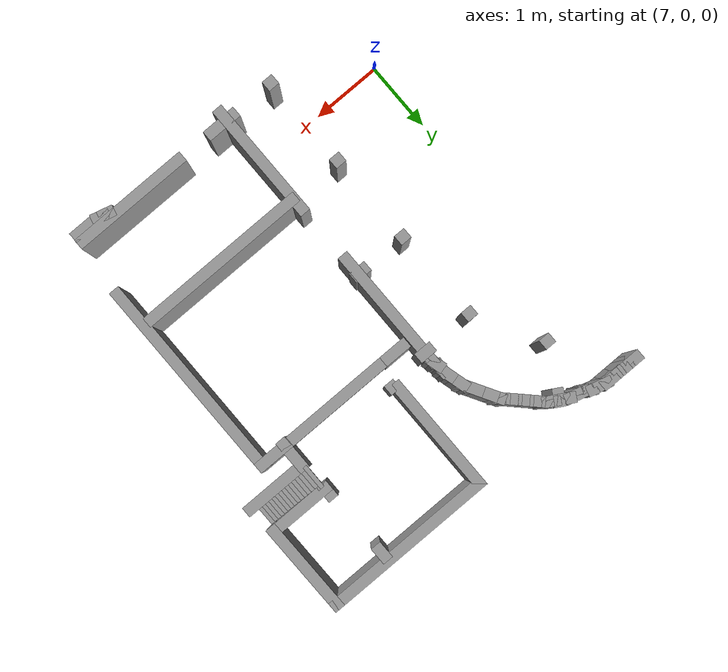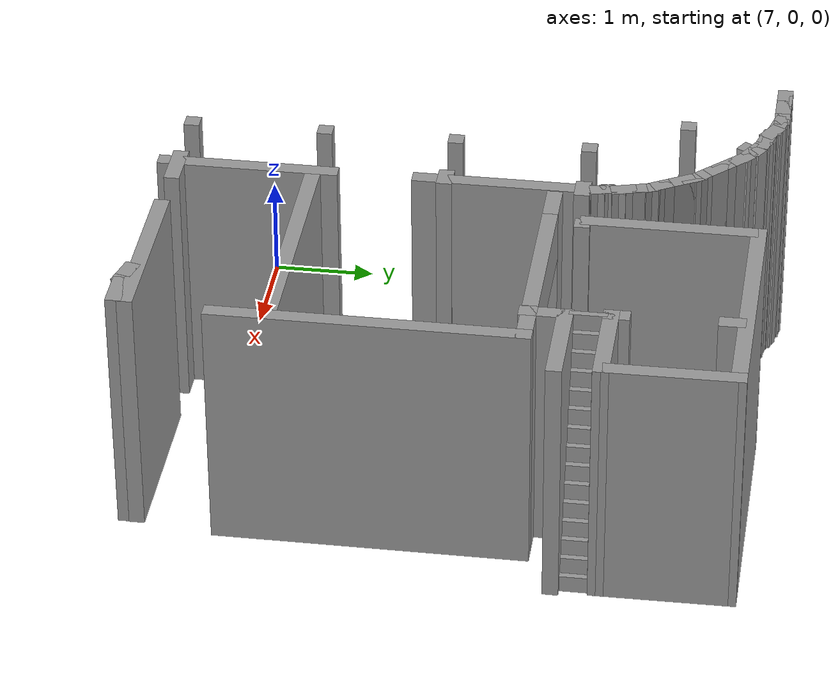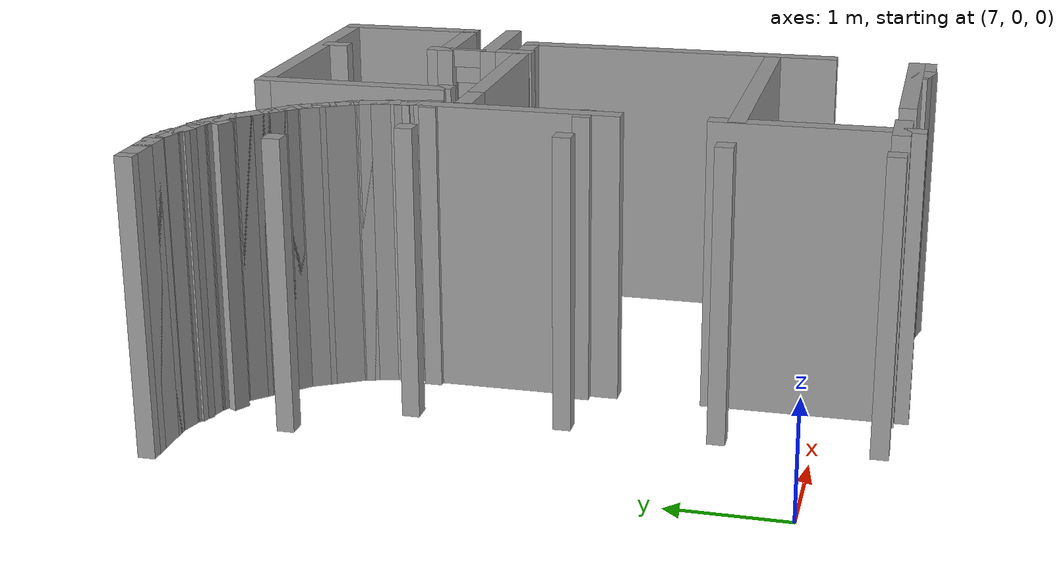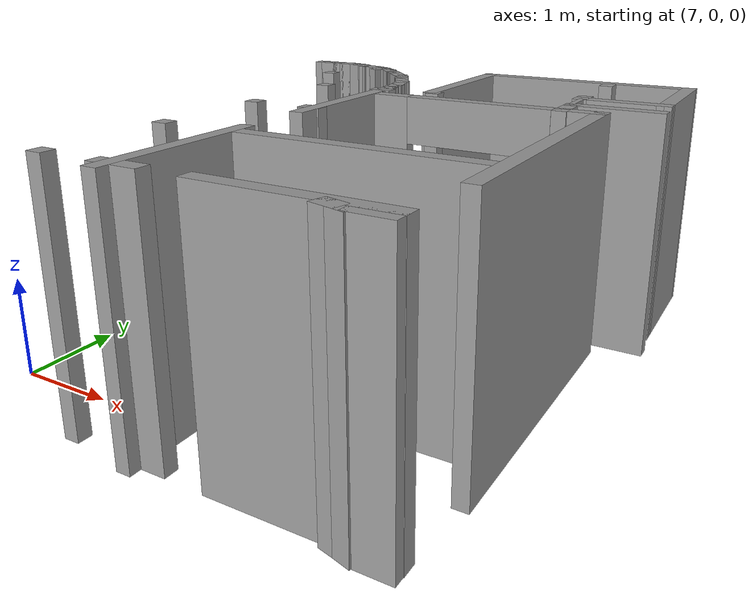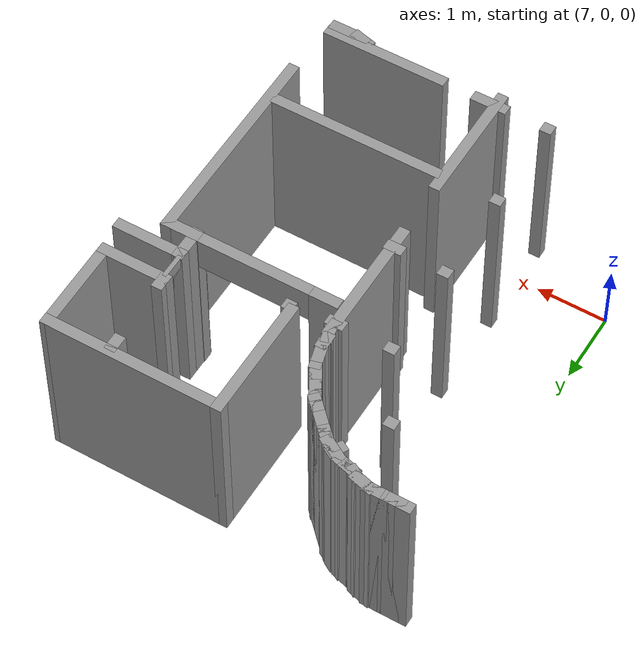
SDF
<sdf version="1.6">
 <model name="draft2">
  <pose>6.97389 -0.64018 0 0 -0 0</pose>
  <link name="Stairs_1">
   <visual name="Stairs_1_Visual_0">
    <pose>5.01456 4.29354 0.083333 0 -0 -1.5708</pose>
    <geometry><box><size>0.352343 0.060625 0.166667</size></box></geometry>
    <material>
     <script><uri>file://media/materials/scripts/gazebo.material</uri><name>Gazebo/Grey</name></script>
     <ambient>1 1 1 1</ambient>
    </material>
   </visual>
   <collision name="Stairs_1_Collision_0">
    <geometry><box><size>0.352343 0.060625 0.166667</size></box></geometry>
    <pose>5.01456 4.29354 0.083333 0 -0 -1.5708</pose>
   </collision>
   <visual name="Stairs_1_Visual_1">
    <pose>4.95394 4.29354 0.25 0 -0 -1.5708</pose>
    <geometry><box><size>0.352343 0.060625 0.166667</size></box></geometry>
    <material>
     <script><uri>file://media/materials/scripts/gazebo.material</uri><name>Gazebo/Grey</name></script>
     <ambient>1 1 1 1</ambient>
    </material>
   </visual>
   <collision name="Stairs_1_Collision_1">
    <geometry><box><size>0.352343 0.060625 0.166667</size></box></geometry>
    <pose>4.95394 4.29354 0.25 0 -0 -1.5708</pose>
   </collision>
   <visual name="Stairs_1_Visual_2">
    <pose>4.89331 4.29354 0.416667 0 -0 -1.5708</pose>
    <geometry><box><size>0.352343 0.060625 0.166667</size></box></geometry>
    <material>
     <script><uri>file://media/materials/scripts/gazebo.material</uri><name>Gazebo/Grey</name></script>
     <ambient>1 1 1 1</ambient>
    </material>
   </visual>
   <collision name="Stairs_1_Collision_2">
    <geometry><box><size>0.352343 0.060625 0.166667</size></box></geometry>
    <pose>4.89331 4.29354 0.416667 0 -0 -1.5708</pose>
   </collision>
   <visual name="Stairs_1_Visual_3">
    <pose>4.83269 4.29354 0.583333 0 -0 -1.5708</pose>
    <geometry><box><size>0.352343 0.060625 0.166667</size></box></geometry>
    <material>
     <script><uri>file://media/materials/scripts/gazebo.material</uri><name>Gazebo/Grey</name></script>
     <ambient>1 1 1 1</ambient>
    </material>
   </visual>
   <collision name="Stairs_1_Collision_3">
    <geometry><box><size>0.352343 0.060625 0.166667</size></box></geometry>
    <pose>4.83269 4.29354 0.583333 0 -0 -1.5708</pose>
   </collision>
   <visual name="Stairs_1_Visual_4">
    <pose>4.77206 4.29354 0.75 0 -0 -1.5708</pose>
    <geometry><box><size>0.352343 0.060625 0.166667</size></box></geometry>
    <material>
     <script><uri>file://media/materials/scripts/gazebo.material</uri><name>Gazebo/Grey</name></script>
     <ambient>1 1 1 1</ambient>
    </material>
   </visual>
   <collision name="Stairs_1_Collision_4">
    <geometry><box><size>0.352343 0.060625 0.166667</size></box></geometry>
    <pose>4.77206 4.29354 0.75 0 -0 -1.5708</pose>
   </collision>
   <visual name="Stairs_1_Visual_5">
    <pose>4.71144 4.29354 0.916667 0 -0 -1.5708</pose>
    <geometry><box><size>0.352343 0.060625 0.166667</size></box></geometry>
    <material>
     <script><uri>file://media/materials/scripts/gazebo.material</uri><name>Gazebo/Grey</name></script>
     <ambient>1 1 1 1</ambient>
    </material>
   </visual>
   <collision name="Stairs_1_Collision_5">
    <geometry><box><size>0.352343 0.060625 0.166667</size></box></geometry>
    <pose>4.71144 4.29354 0.916667 0 -0 -1.5708</pose>
   </collision>
   <visual name="Stairs_1_Visual_6">
    <pose>4.65081 4.29354 1.08333 0 -0 -1.5708</pose>
    <geometry><box><size>0.352343 0.060625 0.166667</size></box></geometry>
    <material>
     <script><uri>file://media/materials/scripts/gazebo.material</uri><name>Gazebo/Grey</name></script>
     <ambient>1 1 1 1</ambient>
    </material>
   </visual>
   <collision name="Stairs_1_Collision_6">
    <geometry><box><size>0.352343 0.060625 0.166667</size></box></geometry>
    <pose>4.65081 4.29354 1.08333 0 -0 -1.5708</pose>
   </collision>
   <visual name="Stairs_1_Visual_7">
    <pose>4.59019 4.29354 1.25 0 -0 -1.5708</pose>
    <geometry><box><size>0.352343 0.060625 0.166667</size></box></geometry>
    <material>
     <script><uri>file://media/materials/scripts/gazebo.material</uri><name>Gazebo/Grey</name></script>
     <ambient>1 1 1 1</ambient>
    </material>
   </visual>
   <collision name="Stairs_1_Collision_7">
    <geometry><box><size>0.352343 0.060625 0.166667</size></box></geometry>
    <pose>4.59019 4.29354 1.25 0 -0 -1.5708</pose>
   </collision>
   <visual name="Stairs_1_Visual_8">
    <pose>4.52956 4.29354 1.41667 0 -0 -1.5708</pose>
    <geometry><box><size>0.352343 0.060625 0.166667</size></box></geometry>
    <material>
     <script><uri>file://media/materials/scripts/gazebo.material</uri><name>Gazebo/Grey</name></script>
     <ambient>1 1 1 1</ambient>
    </material>
   </visual>
   <collision name="Stairs_1_Collision_8">
    <geometry><box><size>0.352343 0.060625 0.166667</size></box></geometry>
    <pose>4.52956 4.29354 1.41667 0 -0 -1.5708</pose>
   </collision>
   <visual name="Stairs_1_Visual_9">
    <pose>4.46894 4.29354 1.58333 0 -0 -1.5708</pose>
    <geometry><box><size>0.352343 0.060625 0.166667</size></box></geometry>
    <material>
     <script><uri>file://media/materials/scripts/gazebo.material</uri><name>Gazebo/Grey</name></script>
     <ambient>1 1 1 1</ambient>
    </material>
   </visual>
   <collision name="Stairs_1_Collision_9">
    <geometry><box><size>0.352343 0.060625 0.166667</size></box></geometry>
    <pose>4.46894 4.29354 1.58333 0 -0 -1.5708</pose>
   </collision>
   <visual name="Stairs_1_Visual_10">
    <pose>4.40831 4.29354 1.75 0 -0 -1.5708</pose>
    <geometry><box><size>0.352343 0.060625 0.166667</size></box></geometry>
    <material>
     <script><uri>file://media/materials/scripts/gazebo.material</uri><name>Gazebo/Grey</name></script>
     <ambient>1 1 1 1</ambient>
    </material>
   </visual>
   <collision name="Stairs_1_Collision_10">
    <geometry><box><size>0.352343 0.060625 0.166667</size></box></geometry>
    <pose>4.40831 4.29354 1.75 0 -0 -1.5708</pose>
   </collision>
   <visual name="Stairs_1_Visual_11">
    <pose>4.34769 4.29354 1.91667 0 -0 -1.5708</pose>
    <geometry><box><size>0.352343 0.060625 0.166667</size></box></geometry>
    <material>
     <script><uri>file://media/materials/scripts/gazebo.material</uri><name>Gazebo/Grey</name></script>
     <ambient>1 1 1 1</ambient>
    </material>
   </visual>
   <collision name="Stairs_1_Collision_11">
    <geometry><box><size>0.352343 0.060625 0.166667</size></box></geometry>
    <pose>4.34769 4.29354 1.91667 0 -0 -1.5708</pose>
   </collision>
   <visual name="Stairs_1_Visual_12">
    <pose>4.28706 4.29354 2.08333 0 -0 -1.5708</pose>
    <geometry><box><size>0.352343 0.060625 0.166667</size></box></geometry>
    <material>
     <script><uri>file://media/materials/scripts/gazebo.material</uri><name>Gazebo/Grey</name></script>
     <ambient>1 1 1 1</ambient>
    </material>
   </visual>
   <collision name="Stairs_1_Collision_12">
    <geometry><box><size>0.352343 0.060625 0.166667</size></box></geometry>
    <pose>4.28706 4.29354 2.08333 0 -0 -1.5708</pose>
   </collision>
   <visual name="Stairs_1_Visual_13">
    <pose>4.22644 4.29354 2.25 0 -0 -1.5708</pose>
    <geometry><box><size>0.352343 0.060625 0.166667</size></box></geometry>
    <material>
     <script><uri>file://media/materials/scripts/gazebo.material</uri><name>Gazebo/Grey</name></script>
     <ambient>1 1 1 1</ambient>
    </material>
   </visual>
   <collision name="Stairs_1_Collision_13">
    <geometry><box><size>0.352343 0.060625 0.166667</size></box></geometry>
    <pose>4.22644 4.29354 2.25 0 -0 -1.5708</pose>
   </collision>
   <visual name="Stairs_1_Visual_14">
    <pose>4.16582 4.29354 2.41667 0 -0 -1.5708</pose>
    <geometry><box><size>0.352343 0.060625 0.166667</size></box></geometry>
    <material>
     <script><uri>file://media/materials/scripts/gazebo.material</uri><name>Gazebo/Grey</name></script>
     <ambient>1 1 1 1</ambient>
    </material>
   </visual>
   <collision name="Stairs_1_Collision_14">
    <geometry><box><size>0.352343 0.060625 0.166667</size></box></geometry>
    <pose>4.16582 4.29354 2.41667 0 -0 -1.5708</pose>
   </collision>
  </link>
  <link name="Wall_112">
   <collision name="Wall_112_Collision">
    <geometry><box><size>0.25 0.15 2.5</size></box></geometry>
    <pose>0 0 1.25 0 -0 0</pose>
   </collision>
   <visual name="Wall_112_Visual">
    <pose>0 0 1.25 0 -0 0</pose>
    <geometry><box><size>0.25 0.15 2.5</size></box></geometry>
    <material>
     <script><uri>file://media/materials/scripts/gazebo.material</uri><name>Gazebo/Grey</name></script>
     <ambient>1 1 1 1</ambient>
    </material>
   </visual>
   <pose>1.12694 5.5445 0 0 0 -2.0944</pose>
  </link>
  <link name="Wall_114">
   <collision name="Wall_114_Collision">
    <geometry><box><size>0.25 0.15 2.5</size></box></geometry>
    <pose>0 0 1.25 0 -0 0</pose>
   </collision>
   <visual name="Wall_114_Visual">
    <pose>0 0 1.25 0 -0 0</pose>
    <geometry><box><size>0.25 0.15 2.5</size></box></geometry>
    <material>
     <script><uri>file://media/materials/scripts/gazebo.material</uri><name>Gazebo/Grey</name></script>
     <ambient>1 1 1 1</ambient>
    </material>
   </visual>
   <pose>2.05194 4.00781 0 0 -0 3.14159</pose>
  </link>
  <link name="Wall_116">
   <collision name="Wall_116_Collision">
    <geometry><box><size>0.25 0.15 2.5</size></box></geometry>
    <pose>0 0 1.25 0 -0 0</pose>
   </collision>
   <visual name="Wall_116_Visual">
    <pose>0 0 1.25 0 -0 0</pose>
    <geometry><box><size>0.25 0.15 2.5</size></box></geometry>
    <material>
     <script><uri>file://media/materials/scripts/gazebo.material</uri><name>Gazebo/Grey</name></script>
     <ambient>1 1 1 1</ambient>
    </material>
   </visual>
   <pose>2.02194 2.6878 0 0 -0 3.14159</pose>
  </link>
  <link name="Wall_135">
   <collision name="Wall_135_Collision">
    <geometry><box><size>0.16 0.15 2.5</size></box></geometry>
    <pose>0 0 1.25 0 -0 0</pose>
   </collision>
   <visual name="Wall_135_Visual">
    <pose>0 0 1.25 0 -0 0</pose>
    <geometry><box><size>0.16 0.15 2.5</size></box></geometry>
    <material>
     <script><uri>file://media/materials/scripts/gazebo.material</uri><name>Gazebo/Grey</name></script>
     <ambient>1 1 1 1</ambient>
    </material>
   </visual>
   <pose>0.775493 4.90486 0 0 -0 0</pose>
  </link>
  <link name="Wall_137">
   <collision name="Wall_137_Collision">
    <geometry><box><size>0.16 0.15 2.5</size></box></geometry>
    <pose>0 0 1.25 0 -0 0</pose>
   </collision>
   <visual name="Wall_137_Visual">
    <pose>0 0 1.25 0 -0 0</pose>
    <geometry><box><size>0.16 0.15 2.5</size></box></geometry>
    <material>
     <script><uri>file://media/materials/scripts/gazebo.material</uri><name>Gazebo/Grey</name></script>
     <ambient>1 1 1 1</ambient>
    </material>
   </visual>
   <pose>1.30449 3.99234 0 0 -0 0</pose>
  </link>
  <link name="Wall_139">
   <collision name="Wall_139_Collision">
    <geometry><box><size>0.16 0.15 2.5</size></box></geometry>
    <pose>0 0 1.25 0 -0 0</pose>
   </collision>
   <visual name="Wall_139_Visual">
    <pose>0 0 1.25 0 -0 0</pose>
    <geometry><box><size>0.16 0.15 2.5</size></box></geometry>
    <material>
     <script><uri>file://media/materials/scripts/gazebo.material</uri><name>Gazebo/Grey</name></script>
     <ambient>1 1 1 1</ambient>
    </material>
   </visual>
   <pose>1.31772 2.69629 0 0 -0 0</pose>
  </link>
  <link name="Wall_141">
   <collision name="Wall_141_Collision">
    <geometry><box><size>0.16 0.15 2.5</size></box></geometry>
    <pose>0 0 1.25 0 -0 0</pose>
   </collision>
   <visual name="Wall_141_Visual">
    <pose>0 0 1.25 0 -0 0</pose>
    <geometry><box><size>0.16 0.15 2.5</size></box></geometry>
    <material>
     <script><uri>file://media/materials/scripts/gazebo.material</uri><name>Gazebo/Grey</name></script>
     <ambient>1 1 1 1</ambient>
    </material>
   </visual>
   <pose>1.31772 1.41346 0 0 -0 0</pose>
  </link>
  <link name="Wall_143">
   <collision name="Wall_143_Collision">
    <geometry><box><size>0.16 0.15 2.5</size></box></geometry>
    <pose>0 0 1.25 0 -0 0</pose>
   </collision>
   <visual name="Wall_143_Visual">
    <pose>0 0 1.25 0 -0 0</pose>
    <geometry><box><size>0.16 0.15 2.5</size></box></geometry>
    <material>
     <script><uri>file://media/materials/scripts/gazebo.material</uri><name>Gazebo/Grey</name></script>
     <ambient>1 1 1 1</ambient>
    </material>
   </visual>
   <pose>1.33094 0.104189 0 0 -0 0</pose>
  </link>
  <link name="Wall_145">
   <collision name="Wall_145_Collision">
    <geometry><box><size>1.75 0.15 2.5</size></box></geometry>
    <pose>0 0 1.25 0 -0 0</pose>
   </collision>
   <visual name="Wall_145_Visual">
    <pose>0 0 1.25 0 -0 0</pose>
    <geometry><box><size>1.75 0.15 2.5</size></box></geometry>
    <material>
     <script><uri>file://media/materials/scripts/gazebo.material</uri><name>Gazebo/Grey</name></script>
     <ambient>1 1 1 1</ambient>
    </material>
   </visual>
   <pose>2.06654 0.785389 0 0 0 -1.5708</pose>
  </link>
  <link name="Wall_152">
   <collision name="Wall_152_Collision">
    <geometry><box><size>0.5 0.15 2.5</size></box></geometry>
    <pose>0 0 1.25 0 -0 0</pose>
   </collision>
   <visual name="Wall_152_Visual">
    <pose>0 0 1.25 0 -0 0</pose>
    <geometry><box><size>0.5 0.15 2.5</size></box></geometry>
    <material>
     <script><uri>file://media/materials/scripts/gazebo.material</uri><name>Gazebo/Grey</name></script>
     <ambient>1 1 1 1</ambient>
    </material>
   </visual>
   <pose>2.14574 0.104189 0 0 -0 0</pose>
  </link>
  <link name="Wall_157">
   <pose>3.39107 3.75429 0 0 -0 3.14159</pose>
   <visual name="Wall_157_Visual_0">
    <pose>-0.982829 0 1.25 0 -0 0</pose>
    <geometry><box><size>0.534342 0.15 2.5</size></box></geometry>
    <material>
     <script><uri>file://media/materials/scripts/gazebo.material</uri><name>Gazebo/Grey</name></script>
     <ambient>1 1 1 1</ambient>
    </material>
   </visual>
   <collision name="Wall_157_Collision_0">
    <geometry><box><size>0.534342 0.15 2.5</size></box></geometry>
    <pose>-0.982829 0 1.25 0 -0 0</pose>
   </collision>
   <visual name="Wall_157_Visual_1">
    <pose>1.04948 0 1.25 0 -0 0</pose>
    <geometry><box><size>0.401036 0.15 2.5</size></box></geometry>
    <material>
     <script><uri>file://media/materials/scripts/gazebo.material</uri><name>Gazebo/Grey</name></script>
     <ambient>1 1 1 1</ambient>
    </material>
   </visual>
   <collision name="Wall_157_Collision_1">
    <geometry><box><size>0.401036 0.15 2.5</size></box></geometry>
    <pose>1.04948 0 1.25 0 -0 0</pose>
   </collision>
   <visual name="Wall_157_Visual_2">
    <pose>0.066653 0 2.25 0 -0 0</pose>
    <geometry><box><size>1.56462 0.15 0.5</size></box></geometry>
    <material>
     <script><uri>file://media/materials/scripts/gazebo.material</uri><name>Gazebo/Grey</name></script>
     <ambient>1 1 1 1</ambient>
    </material>
   </visual>
   <collision name="Wall_157_Collision_2">
    <geometry><box><size>1.56462 0.15 0.5</size></box></geometry>
    <pose>0.066653 0 2.25 0 -0 0</pose>
   </collision>
  </link>
  <link name="Wall_159">
   <collision name="Wall_159_Collision">
    <geometry><box><size>3 0.15 2.5</size></box></geometry>
    <pose>0 0 1.25 0 -0 0</pose>
   </collision>
   <visual name="Wall_159_Visual">
    <pose>0 0 1.25 0 -0 0</pose>
    <geometry><box><size>3 0.15 2.5</size></box></geometry>
    <material>
     <script><uri>file://media/materials/scripts/gazebo.material</uri><name>Gazebo/Grey</name></script>
     <ambient>1 1 1 1</ambient>
    </material>
   </visual>
   <pose>4.56607 2.32929 0 0 0 -1.5708</pose>
  </link>
  <link name="Wall_169">
   <collision name="Wall_169_Collision">
    <geometry><box><size>1.75 0.15 2.5</size></box></geometry>
    <pose>0 0 1.25 0 -0 0</pose>
   </collision>
   <visual name="Wall_169_Visual">
    <pose>0 0 1.25 0 -0 0</pose>
    <geometry><box><size>1.75 0.15 2.5</size></box></geometry>
    <material>
     <script><uri>file://media/materials/scripts/gazebo.material</uri><name>Gazebo/Grey</name></script>
     <ambient>1 1 1 1</ambient>
    </material>
   </visual>
   <pose>3.66307 0.096172 0 0 -0 3.14159</pose>
  </link>
  <link name="Wall_214">
   <collision name="Wall_214_Collision">
    <geometry><box><size>0.393478 0.15 2.5</size></box></geometry>
    <pose>0 0 1.25 0 -0 0</pose>
   </collision>
   <visual name="Wall_214_Visual">
    <pose>0 0 1.25 0 -0 0</pose>
    <geometry><box><size>0.393478 0.15 2.5</size></box></geometry>
    <material>
     <script><uri>file://media/materials/scripts/gazebo.material</uri><name>Gazebo/Grey</name></script>
     <ambient>1 1 1 1</ambient>
    </material>
   </visual>
   <pose>4.33655 -0.0091 0 0 -0 3.14159</pose>
  </link>
  <link name="Wall_218">
   <collision name="Wall_218_Collision">
    <geometry><box><size>0.249146 0.15 2.5</size></box></geometry>
    <pose>0 0 1.25 0 -0 0</pose>
   </collision>
   <visual name="Wall_218_Visual">
    <pose>0 0 1.25 0 -0 0</pose>
    <geometry><box><size>0.249146 0.15 2.5</size></box></geometry>
    <material>
     <script><uri>file://media/materials/scripts/gazebo.material</uri><name>Gazebo/Grey</name></script>
     <ambient>1 1 1 1</ambient>
    </material>
   </visual>
   <pose>4.08872 0.003943 0 0 -0 2.87534</pose>
  </link>
  <link name="Wall_219">
   <collision name="Wall_219_Collision">
    <geometry><box><size>0.221706 0.15 2.5</size></box></geometry>
    <pose>0 0 1.25 0 -0 0</pose>
   </collision>
   <visual name="Wall_219_Visual">
    <pose>0 0 1.25 0 -0 0</pose>
    <geometry><box><size>0.221706 0.15 2.5</size></box></geometry>
    <material>
     <script><uri>file://media/materials/scripts/gazebo.material</uri><name>Gazebo/Grey</name></script>
     <ambient>1 1 1 1</ambient>
    </material>
   </visual>
   <pose>4.00611 0.025682 0 0 -0 2.89661</pose>
  </link>
  <link name="Wall_237">
   <collision name="Wall_237_Collision">
    <geometry><box><size>0.15 0.15 2.5</size></box></geometry>
    <pose>0 0 1.25 0 -0 0</pose>
   </collision>
   <visual name="Wall_237_Visual">
    <pose>0 0 1.25 0 -0 0</pose>
    <geometry><box><size>0.15 0.15 2.5</size></box></geometry>
    <material>
     <script><uri>file://media/materials/scripts/gazebo.material</uri><name>Gazebo/Grey</name></script>
     <ambient>1 1 1 1</ambient>
    </material>
   </visual>
   <pose>2.66183 4.07125 0 0 -0 0</pose>
  </link>
  <link name="Wall_239">
   <collision name="Wall_239_Collision">
    <geometry><box><size>1.75 0.15 2.5</size></box></geometry>
    <pose>0 0 1.25 0 -0 0</pose>
   </collision>
   <visual name="Wall_239_Visual">
    <pose>0 0 1.25 0 -0 0</pose>
    <geometry><box><size>1.75 0.15 2.5</size></box></geometry>
    <material>
     <script><uri>file://media/materials/scripts/gazebo.material</uri><name>Gazebo/Grey</name></script>
     <ambient>1 1 1 1</ambient>
    </material>
   </visual>
   <pose>2.60896 4.91828 0 0 0 -1.5708</pose>
  </link>
  <link name="Wall_241">
   <collision name="Wall_241_Collision">
    <geometry><box><size>2.53025 0.15 2.5</size></box></geometry>
    <pose>0 0 1.25 0 -0 0</pose>
   </collision>
   <visual name="Wall_241_Visual">
    <pose>0 0 1.25 0 -0 0</pose>
    <geometry><box><size>2.53025 0.15 2.5</size></box></geometry>
    <material>
     <script><uri>file://media/materials/scripts/gazebo.material</uri><name>Gazebo/Grey</name></script>
     <ambient>1 1 1 1</ambient>
    </material>
   </visual>
   <pose>3.79908 5.71828 0 0 -0 0</pose>
  </link>
  <link name="Wall_243">
   <collision name="Wall_243_Collision">
    <geometry><box><size>0.25 0.15 2.5</size></box></geometry>
    <pose>0 0 1.25 0 -0 0</pose>
   </collision>
   <visual name="Wall_243_Visual">
    <pose>0 0 1.25 0 -0 0</pose>
    <geometry><box><size>0.25 0.15 2.5</size></box></geometry>
    <material>
     <script><uri>file://media/materials/scripts/gazebo.material</uri><name>Gazebo/Grey</name></script>
     <ambient>1 1 1 1</ambient>
    </material>
   </visual>
   <pose>4.12758 5.59159 0 0 -0 1.5708</pose>
  </link>
  <link name="Wall_246">
   <collision name="Wall_246_Collision">
    <geometry><box><size>1 0.15 2.5</size></box></geometry>
    <pose>0 0 1.25 0 -0 0</pose>
   </collision>
   <visual name="Wall_246_Visual">
    <pose>0 0 1.25 0 -0 0</pose>
    <geometry><box><size>1 0.15 2.5</size></box></geometry>
    <material>
     <script><uri>file://media/materials/scripts/gazebo.material</uri><name>Gazebo/Grey</name></script>
     <ambient>1 1 1 1</ambient>
    </material>
   </visual>
   <pose>4.57447 4.49722 0 0 -0 3.14159</pose>
  </link>
  <link name="Wall_247">
   <collision name="Wall_247_Collision">
    <geometry><box><size>0.25 0.15 2.5</size></box></geometry>
    <pose>0 0 1.25 0 -0 0</pose>
   </collision>
   <visual name="Wall_247_Visual">
    <pose>0 0 1.25 0 -0 0</pose>
    <geometry><box><size>0.25 0.15 2.5</size></box></geometry>
    <material>
     <script><uri>file://media/materials/scripts/gazebo.material</uri><name>Gazebo/Grey</name></script>
     <ambient>1 1 1 1</ambient>
    </material>
   </visual>
   <pose>4.14947 4.54722 0 0 -0 1.5708</pose>
  </link>
  <link name="Wall_249">
   <collision name="Wall_249_Collision">
    <geometry><box><size>1 0.15 2.5</size></box></geometry>
    <pose>0 0 1.25 0 -0 0</pose>
   </collision>
   <visual name="Wall_249_Visual">
    <pose>0 0 1.25 0 -0 0</pose>
    <geometry><box><size>1 0.15 2.5</size></box></geometry>
    <material>
     <script><uri>file://media/materials/scripts/gazebo.material</uri><name>Gazebo/Grey</name></script>
     <ambient>1 1 1 1</ambient>
    </material>
   </visual>
   <pose>4.61424 4.08457 0 0 -0 3.14159</pose>
  </link>
  <link name="Wall_251">
   <collision name="Wall_251_Collision">
    <geometry><box><size>0.5 0.15 2.5</size></box></geometry>
    <pose>0 0 1.25 0 -0 0</pose>
   </collision>
   <visual name="Wall_251_Visual">
    <pose>0 0 1.25 0 -0 0</pose>
    <geometry><box><size>0.5 0.15 2.5</size></box></geometry>
    <material>
     <script><uri>file://media/materials/scripts/gazebo.material</uri><name>Gazebo/Grey</name></script>
     <ambient>1 1 1 1</ambient>
    </material>
   </visual>
   <pose>4.18924 3.90957 0 0 0 -1.5708</pose>
  </link>
  <link name="Wall_256">
   <collision name="Wall_256_Collision">
    <geometry><box><size>1.3711 0.15 2.5</size></box></geometry>
    <pose>0 0 1.25 0 -0 0</pose>
   </collision>
   <visual name="Wall_256_Visual">
    <pose>0 0 1.25 0 -0 0</pose>
    <geometry><box><size>1.3711 0.15 2.5</size></box></geometry>
    <material>
     <script><uri>file://media/materials/scripts/gazebo.material</uri><name>Gazebo/Grey</name></script>
     <ambient>1 1 1 1</ambient>
    </material>
   </visual>
   <pose>4.99434 5.10775 0 0 0 -1.56239</pose>
  </link>
  <link name="Wall_301">
   <collision name="Wall_301_Collision">
    <geometry><box><size>2.5 0.15 2.5</size></box></geometry>
    <pose>0 0 1.25 0 -0 0</pose>
   </collision>
   <visual name="Wall_301_Visual">
    <pose>0 0 1.25 0 -0 0</pose>
    <geometry><box><size>2.5 0.15 2.5</size></box></geometry>
    <material>
     <script><uri>file://media/materials/scripts/gazebo.material</uri><name>Gazebo/Grey</name></script>
     <ambient>1 1 1 1</ambient>
    </material>
   </visual>
   <pose>3.26831 1.42368 0 0 -0 0</pose>
  </link>
  <link name="Wall_67">
   <collision name="Wall_67_Collision">
    <geometry><box><size>0.25 0.15 2.5</size></box></geometry>
    <pose>0 0 1.25 0 -0 0</pose>
   </collision>
   <visual name="Wall_67_Visual">
    <pose>0 0 1.25 0 -0 0</pose>
    <geometry><box><size>0.25 0.15 2.5</size></box></geometry>
    <material>
     <script><uri>file://media/materials/scripts/gazebo.material</uri><name>Gazebo/Grey</name></script>
     <ambient>1 1 1 1</ambient>
    </material>
   </visual>
   <pose>0.094275 5.79674 0 0 -0 0</pose>
  </link>
  <link name="Wall_68">
   <collision name="Wall_68_Collision">
    <geometry><box><size>0.25 0.15 2.5</size></box></geometry>
    <pose>0 0 1.25 0 -0 0</pose>
   </collision>
   <visual name="Wall_68_Visual">
    <pose>0 0 1.25 0 -0 0</pose>
    <geometry><box><size>0.25 0.15 2.5</size></box></geometry>
    <material>
     <script><uri>file://media/materials/scripts/gazebo.material</uri><name>Gazebo/Grey</name></script>
     <ambient>1 1 1 1</ambient>
    </material>
   </visual>
   <pose>0.194275 5.79674 0 0 -0 0</pose>
  </link>
  <link name="Wall_69">
   <collision name="Wall_69_Collision">
    <geometry><box><size>0.25 0.15 2.5</size></box></geometry>
    <pose>0 0 1.25 0 -0 0</pose>
   </collision>
   <visual name="Wall_69_Visual">
    <pose>0 0 1.25 0 -0 0</pose>
    <geometry><box><size>0.25 0.15 2.5</size></box></geometry>
    <material>
     <script><uri>file://media/materials/scripts/gazebo.material</uri><name>Gazebo/Grey</name></script>
     <ambient>1 1 1 1</ambient>
    </material>
   </visual>
   <pose>0.294275 5.79674 0 0 -0 0</pose>
  </link>
  <link name="Wall_70">
   <collision name="Wall_70_Collision">
    <geometry><box><size>0.25 0.15 2.5</size></box></geometry>
    <pose>0 0 1.25 0 -0 0</pose>
   </collision>
   <visual name="Wall_70_Visual">
    <pose>0 0 1.25 0 -0 0</pose>
    <geometry><box><size>0.25 0.15 2.5</size></box></geometry>
    <material>
     <script><uri>file://media/materials/scripts/gazebo.material</uri><name>Gazebo/Grey</name></script>
     <ambient>1 1 1 1</ambient>
    </material>
   </visual>
   <pose>0.394276 5.79674 0 0 -0 0</pose>
  </link>
  <link name="Wall_71">
   <collision name="Wall_71_Collision">
    <geometry><box><size>0.25 0.15 2.5</size></box></geometry>
    <pose>0 0 1.25 0 -0 0</pose>
   </collision>
   <visual name="Wall_71_Visual">
    <pose>0 0 1.25 0 -0 0</pose>
    <geometry><box><size>0.25 0.15 2.5</size></box></geometry>
    <material>
     <script><uri>file://media/materials/scripts/gazebo.material</uri><name>Gazebo/Grey</name></script>
     <ambient>1 1 1 1</ambient>
    </material>
   </visual>
   <pose>0.494276 5.79674 0 0 -0 0</pose>
  </link>
  <link name="Wall_72">
   <collision name="Wall_72_Collision">
    <geometry><box><size>0.25 0.15 2.5</size></box></geometry>
    <pose>0 0 1.25 0 -0 0</pose>
   </collision>
   <visual name="Wall_72_Visual">
    <pose>0 0 1.25 0 -0 0</pose>
    <geometry><box><size>0.25 0.15 2.5</size></box></geometry>
    <material>
     <script><uri>file://media/materials/scripts/gazebo.material</uri><name>Gazebo/Grey</name></script>
     <ambient>1 1 1 1</ambient>
    </material>
   </visual>
   <pose>0.592572 5.7838 0 0 0 -0.261799</pose>
  </link>
  <link name="Wall_73">
   <collision name="Wall_73_Collision">
    <geometry><box><size>0.25 0.15 2.5</size></box></geometry>
    <pose>0 0 1.25 0 -0 0</pose>
   </collision>
   <visual name="Wall_73_Visual">
    <pose>0 0 1.25 0 -0 0</pose>
    <geometry><box><size>0.25 0.15 2.5</size></box></geometry>
    <material>
     <script><uri>file://media/materials/scripts/gazebo.material</uri><name>Gazebo/Grey</name></script>
     <ambient>1 1 1 1</ambient>
    </material>
   </visual>
   <pose>0.689164 5.75792 0 0 0 -0.261799</pose>
  </link>
  <link name="Wall_74">
   <collision name="Wall_74_Collision">
    <geometry><box><size>0.25 0.15 2.5</size></box></geometry>
    <pose>0 0 1.25 0 -0 0</pose>
   </collision>
   <visual name="Wall_74_Visual">
    <pose>0 0 1.25 0 -0 0</pose>
    <geometry><box><size>0.25 0.15 2.5</size></box></geometry>
    <material>
     <script><uri>file://media/materials/scripts/gazebo.material</uri><name>Gazebo/Grey</name></script>
     <ambient>1 1 1 1</ambient>
    </material>
   </visual>
   <pose>0.780762 5.71998 0 0 0 -0.523599</pose>
  </link>
  <link name="Wall_75">
   <collision name="Wall_75_Collision">
    <geometry><box><size>0.25 0.15 2.5</size></box></geometry>
    <pose>0 0 1.25 0 -0 0</pose>
   </collision>
   <visual name="Wall_75_Visual">
    <pose>0 0 1.25 0 -0 0</pose>
    <geometry><box><size>0.25 0.15 2.5</size></box></geometry>
    <material>
     <script><uri>file://media/materials/scripts/gazebo.material</uri><name>Gazebo/Grey</name></script>
     <ambient>1 1 1 1</ambient>
    </material>
   </visual>
   <pose>0.872359 5.68204 0 0 0 -0.261799</pose>
  </link>
  <link name="Wall_76">
   <collision name="Wall_76_Collision">
    <geometry><box><size>0.25 0.15 2.5</size></box></geometry>
    <pose>0 0 1.25 0 -0 0</pose>
   </collision>
   <visual name="Wall_76_Visual">
    <pose>0 0 1.25 0 -0 0</pose>
    <geometry><box><size>0.25 0.15 2.5</size></box></geometry>
    <material>
     <script><uri>file://media/materials/scripts/gazebo.material</uri><name>Gazebo/Grey</name></script>
     <ambient>1 1 1 1</ambient>
    </material>
   </visual>
   <pose>0.968952 5.65616 0 0 0 -0.261799</pose>
  </link>
  <link name="Wall_77">
   <collision name="Wall_77_Collision">
    <geometry><box><size>0.25 0.15 2.5</size></box></geometry>
    <pose>0 0 1.25 0 -0 0</pose>
   </collision>
   <visual name="Wall_77_Visual">
    <pose>0 0 1.25 0 -0 0</pose>
    <geometry><box><size>0.25 0.15 2.5</size></box></geometry>
    <material>
     <script><uri>file://media/materials/scripts/gazebo.material</uri><name>Gazebo/Grey</name></script>
     <ambient>1 1 1 1</ambient>
    </material>
   </visual>
   <pose>1.06055 5.61822 0 0 0 -0.523599</pose>
  </link>
  <link name="Wall_78">
   <collision name="Wall_78_Collision">
    <geometry><box><size>0.25 0.15 2.5</size></box></geometry>
    <pose>0 0 1.25 0 -0 0</pose>
   </collision>
   <visual name="Wall_78_Visual">
    <pose>0 0 1.25 0 -0 0</pose>
    <geometry><box><size>0.25 0.15 2.5</size></box></geometry>
    <material>
     <script><uri>file://media/materials/scripts/gazebo.material</uri><name>Gazebo/Grey</name></script>
     <ambient>1 1 1 1</ambient>
    </material>
   </visual>
   <pose>1.14715 5.56822 0 0 0 -0.523599</pose>
  </link>
  <link name="Wall_79">
   <collision name="Wall_79_Collision">
    <geometry><box><size>0.25 0.15 2.5</size></box></geometry>
    <pose>0 0 1.25 0 -0 0</pose>
   </collision>
   <visual name="Wall_79_Visual">
    <pose>0 0 1.25 0 -0 0</pose>
    <geometry><box><size>0.25 0.15 2.5</size></box></geometry>
    <material>
     <script><uri>file://media/materials/scripts/gazebo.material</uri><name>Gazebo/Grey</name></script>
     <ambient>1 1 1 1</ambient>
    </material>
   </visual>
   <pose>1.23375 5.51821 0 0 0 -0.523599</pose>
  </link>
  <link name="Wall_80">
   <collision name="Wall_80_Collision">
    <geometry><box><size>0.25 0.15 2.5</size></box></geometry>
    <pose>0 0 1.25 0 -0 0</pose>
   </collision>
   <visual name="Wall_80_Visual">
    <pose>0 0 1.25 0 -0 0</pose>
    <geometry><box><size>0.25 0.15 2.5</size></box></geometry>
    <material>
     <script><uri>file://media/materials/scripts/gazebo.material</uri><name>Gazebo/Grey</name></script>
     <ambient>1 1 1 1</ambient>
    </material>
   </visual>
   <pose>1.31241 5.45786 0 0 0 -0.785398</pose>
  </link>
  <link name="Wall_81">
   <collision name="Wall_81_Collision">
    <geometry><box><size>0.25 0.15 2.5</size></box></geometry>
    <pose>0 0 1.25 0 -0 0</pose>
   </collision>
   <visual name="Wall_81_Visual">
    <pose>0 0 1.25 0 -0 0</pose>
    <geometry><box><size>0.25 0.15 2.5</size></box></geometry>
    <material>
     <script><uri>file://media/materials/scripts/gazebo.material</uri><name>Gazebo/Grey</name></script>
     <ambient>1 1 1 1</ambient>
    </material>
   </visual>
   <pose>1.38312 5.38715 0 0 0 -0.785398</pose>
  </link>
  <link name="Wall_82">
   <collision name="Wall_82_Collision">
    <geometry><box><size>0.25 0.15 2.5</size></box></geometry>
    <pose>0 0 1.25 0 -0 0</pose>
   </collision>
   <visual name="Wall_82_Visual">
    <pose>0 0 1.25 0 -0 0</pose>
    <geometry><box><size>0.25 0.15 2.5</size></box></geometry>
    <material>
     <script><uri>file://media/materials/scripts/gazebo.material</uri><name>Gazebo/Grey</name></script>
     <ambient>1 1 1 1</ambient>
    </material>
   </visual>
   <pose>1.45383 5.31644 0 0 0 -0.785398</pose>
  </link>
  <link name="Wall_83">
   <collision name="Wall_83_Collision">
    <geometry><box><size>0.25 0.15 2.5</size></box></geometry>
    <pose>0 0 1.25 0 -0 0</pose>
   </collision>
   <visual name="Wall_83_Visual">
    <pose>0 0 1.25 0 -0 0</pose>
    <geometry><box><size>0.25 0.15 2.5</size></box></geometry>
    <material>
     <script><uri>file://media/materials/scripts/gazebo.material</uri><name>Gazebo/Grey</name></script>
     <ambient>1 1 1 1</ambient>
    </material>
   </visual>
   <pose>1.52454 5.24573 0 0 0 -0.785398</pose>
  </link>
  <link name="Wall_84">
   <collision name="Wall_84_Collision">
    <geometry><box><size>0.25 0.15 2.5</size></box></geometry>
    <pose>0 0 1.25 0 -0 0</pose>
   </collision>
   <visual name="Wall_84_Visual">
    <pose>0 0 1.25 0 -0 0</pose>
    <geometry><box><size>0.25 0.15 2.5</size></box></geometry>
    <material>
     <script><uri>file://media/materials/scripts/gazebo.material</uri><name>Gazebo/Grey</name></script>
     <ambient>1 1 1 1</ambient>
    </material>
   </visual>
   <pose>1.59525 5.17502 0 0 0 -0.785398</pose>
  </link>
  <link name="Wall_85">
   <collision name="Wall_85_Collision">
    <geometry><box><size>0.25 0.15 2.5</size></box></geometry>
    <pose>0 0 1.25 0 -0 0</pose>
   </collision>
   <visual name="Wall_85_Visual">
    <pose>0 0 1.25 0 -0 0</pose>
    <geometry><box><size>0.25 0.15 2.5</size></box></geometry>
    <material>
     <script><uri>file://media/materials/scripts/gazebo.material</uri><name>Gazebo/Grey</name></script>
     <ambient>1 1 1 1</ambient>
    </material>
   </visual>
   <pose>1.66596 5.10431 0 0 0 -0.785398</pose>
  </link>
  <link name="Wall_86">
   <collision name="Wall_86_Collision">
    <geometry><box><size>0.25 0.15 2.5</size></box></geometry>
    <pose>0 0 1.25 0 -0 0</pose>
   </collision>
   <visual name="Wall_86_Visual">
    <pose>0 0 1.25 0 -0 0</pose>
    <geometry><box><size>0.25 0.15 2.5</size></box></geometry>
    <material>
     <script><uri>file://media/materials/scripts/gazebo.material</uri><name>Gazebo/Grey</name></script>
     <ambient>1 1 1 1</ambient>
    </material>
   </visual>
   <pose>1.72632 5.02565 0 0 0 -1.0472</pose>
  </link>
  <link name="Wall_87">
   <collision name="Wall_87_Collision">
    <geometry><box><size>0.25 0.15 2.5</size></box></geometry>
    <pose>0 0 1.25 0 -0 0</pose>
   </collision>
   <visual name="Wall_87_Visual">
    <pose>0 0 1.25 0 -0 0</pose>
    <geometry><box><size>0.25 0.15 2.5</size></box></geometry>
    <material>
     <script><uri>file://media/materials/scripts/gazebo.material</uri><name>Gazebo/Grey</name></script>
     <ambient>1 1 1 1</ambient>
    </material>
   </visual>
   <pose>1.77632 4.93905 0 0 0 -1.0472</pose>
  </link>
  <link name="Wall_88">
   <collision name="Wall_88_Collision">
    <geometry><box><size>0.25 0.15 2.5</size></box></geometry>
    <pose>0 0 1.25 0 -0 0</pose>
   </collision>
   <visual name="Wall_88_Visual">
    <pose>0 0 1.25 0 -0 0</pose>
    <geometry><box><size>0.25 0.15 2.5</size></box></geometry>
    <material>
     <script><uri>file://media/materials/scripts/gazebo.material</uri><name>Gazebo/Grey</name></script>
     <ambient>1 1 1 1</ambient>
    </material>
   </visual>
   <pose>1.82632 4.85245 0 0 0 -1.0472</pose>
  </link>
  <link name="Wall_89">
   <collision name="Wall_89_Collision">
    <geometry><box><size>0.25 0.15 2.5</size></box></geometry>
    <pose>0 0 1.25 0 -0 0</pose>
   </collision>
   <visual name="Wall_89_Visual">
    <pose>0 0 1.25 0 -0 0</pose>
    <geometry><box><size>0.25 0.15 2.5</size></box></geometry>
    <material>
     <script><uri>file://media/materials/scripts/gazebo.material</uri><name>Gazebo/Grey</name></script>
     <ambient>1 1 1 1</ambient>
    </material>
   </visual>
   <pose>1.87632 4.76584 0 0 0 -1.0472</pose>
  </link>
  <link name="Wall_90">
   <collision name="Wall_90_Collision">
    <geometry><box><size>0.25 0.15 2.5</size></box></geometry>
    <pose>0 0 1.25 0 -0 0</pose>
   </collision>
   <visual name="Wall_90_Visual">
    <pose>0 0 1.25 0 -0 0</pose>
    <geometry><box><size>0.25 0.15 2.5</size></box></geometry>
    <material>
     <script><uri>file://media/materials/scripts/gazebo.material</uri><name>Gazebo/Grey</name></script>
     <ambient>1 1 1 1</ambient>
    </material>
   </visual>
   <pose>1.92632 4.67924 0 0 0 -1.0472</pose>
  </link>
  <link name="Wall_91">
   <collision name="Wall_91_Collision">
    <geometry><box><size>0.25 0.15 2.5</size></box></geometry>
    <pose>0 0 1.25 0 -0 0</pose>
   </collision>
   <visual name="Wall_91_Visual">
    <pose>0 0 1.25 0 -0 0</pose>
    <geometry><box><size>0.25 0.15 2.5</size></box></geometry>
    <material>
     <script><uri>file://media/materials/scripts/gazebo.material</uri><name>Gazebo/Grey</name></script>
     <ambient>1 1 1 1</ambient>
    </material>
   </visual>
   <pose>1.96426 4.58764 0 0 0 -1.309</pose>
  </link>
  <link name="Wall_92">
   <collision name="Wall_92_Collision">
    <geometry><box><size>0.25 0.15 2.5</size></box></geometry>
    <pose>0 0 1.25 0 -0 0</pose>
   </collision>
   <visual name="Wall_92_Visual">
    <pose>0 0 1.25 0 -0 0</pose>
    <geometry><box><size>0.25 0.15 2.5</size></box></geometry>
    <material>
     <script><uri>file://media/materials/scripts/gazebo.material</uri><name>Gazebo/Grey</name></script>
     <ambient>1 1 1 1</ambient>
    </material>
   </visual>
   <pose>1.99014 4.49105 0 0 0 -1.309</pose>
  </link>
  <link name="Wall_93">
   <collision name="Wall_93_Collision">
    <geometry><box><size>0.25 0.15 2.5</size></box></geometry>
    <pose>0 0 1.25 0 -0 0</pose>
   </collision>
   <visual name="Wall_93_Visual">
    <pose>0 0 1.25 0 -0 0</pose>
    <geometry><box><size>0.25 0.15 2.5</size></box></geometry>
    <material>
     <script><uri>file://media/materials/scripts/gazebo.material</uri><name>Gazebo/Grey</name></script>
     <ambient>1 1 1 1</ambient>
    </material>
   </visual>
   <pose>2.01602 4.39446 0 0 0 -1.309</pose>
  </link>
  <link name="Wall_94">
   <collision name="Wall_94_Collision">
    <geometry><box><size>0.25 0.15 2.5</size></box></geometry>
    <pose>0 0 1.25 0 -0 0</pose>
   </collision>
   <visual name="Wall_94_Visual">
    <pose>0 0 1.25 0 -0 0</pose>
    <geometry><box><size>0.25 0.15 2.5</size></box></geometry>
    <material>
     <script><uri>file://media/materials/scripts/gazebo.material</uri><name>Gazebo/Grey</name></script>
     <ambient>1 1 1 1</ambient>
    </material>
   </visual>
   <pose>2.02897 4.29616 0 0 0 -1.5708</pose>
  </link>
  <link name="Wall_95">
   <collision name="Wall_95_Collision">
    <geometry><box><size>0.25 0.15 2.5</size></box></geometry>
    <pose>0 0 1.25 0 -0 0</pose>
   </collision>
   <visual name="Wall_95_Visual">
    <pose>0 0 1.25 0 -0 0</pose>
    <geometry><box><size>0.25 0.15 2.5</size></box></geometry>
    <material>
     <script><uri>file://media/materials/scripts/gazebo.material</uri><name>Gazebo/Grey</name></script>
     <ambient>1 1 1 1</ambient>
    </material>
   </visual>
   <pose>2.04191 4.19787 0 0 0 -1.309</pose>
  </link>
  <link name="Wall_96">
   <collision name="Wall_96_Collision">
    <geometry><box><size>0.25 0.15 2.5</size></box></geometry>
    <pose>0 0 1.25 0 -0 0</pose>
   </collision>
   <visual name="Wall_96_Visual">
    <pose>0 0 1.25 0 -0 0</pose>
    <geometry><box><size>0.25 0.15 2.5</size></box></geometry>
    <material>
     <script><uri>file://media/materials/scripts/gazebo.material</uri><name>Gazebo/Grey</name></script>
     <ambient>1 1 1 1</ambient>
    </material>
   </visual>
   <pose>2.05485 4.09957 0 0 0 -1.5708</pose>
  </link>
  <link name="Wall_97">
   <collision name="Wall_97_Collision">
    <geometry><box><size>1.75 0.15 2.5</size></box></geometry>
    <pose>0 0 1.25 0 -0 0</pose>
   </collision>
   <visual name="Wall_97_Visual">
    <pose>0 0 1.25 0 -0 0</pose>
    <geometry><box><size>1.75 0.15 2.5</size></box></geometry>
    <material>
     <script><uri>file://media/materials/scripts/gazebo.material</uri><name>Gazebo/Grey</name></script>
     <ambient>1 1 1 1</ambient>
    </material>
   </visual>
   <pose>2.05485 3.24957 0 0 0 -1.5708</pose>
  </link>
  <static>1</static>
 </model>
</sdf>
